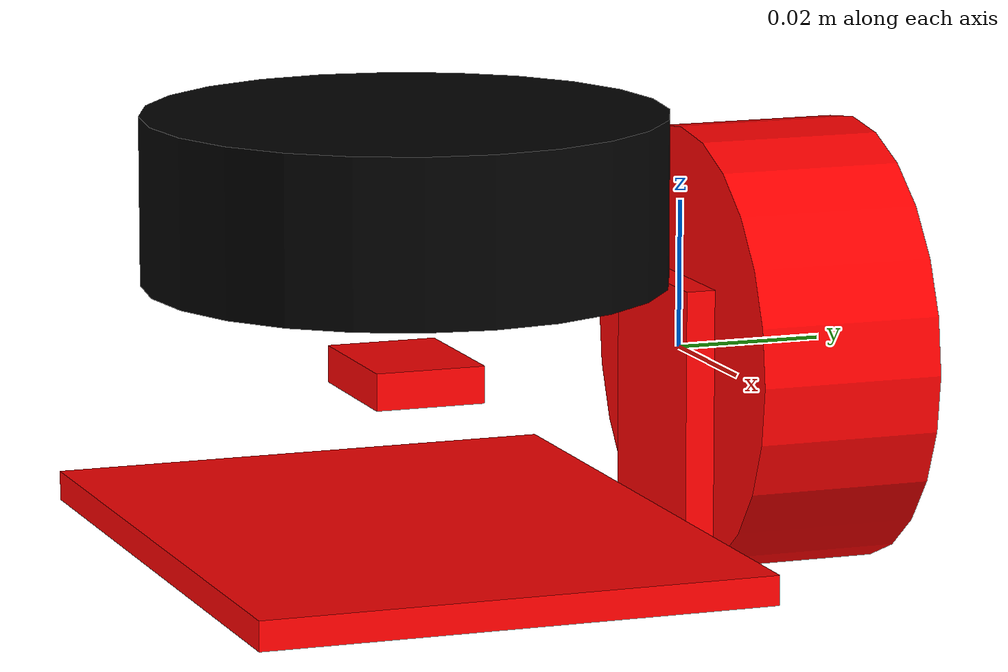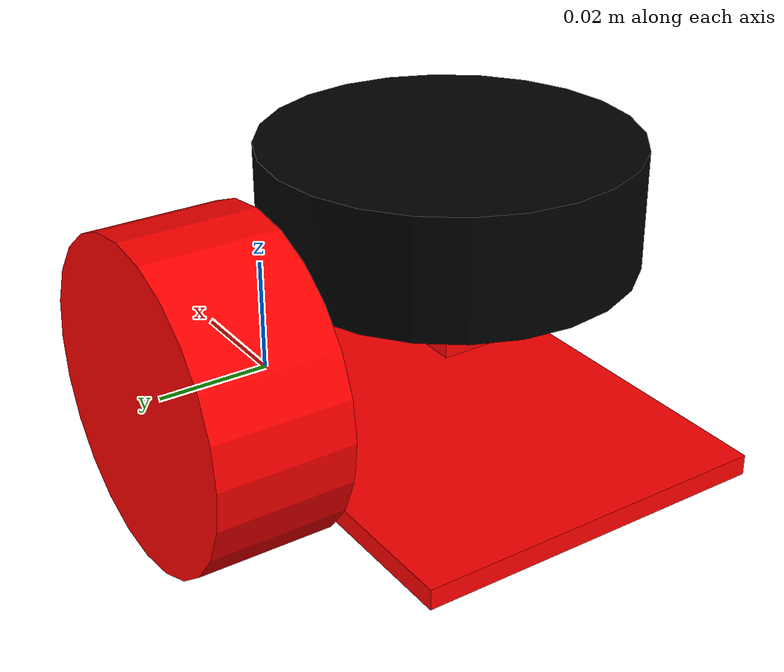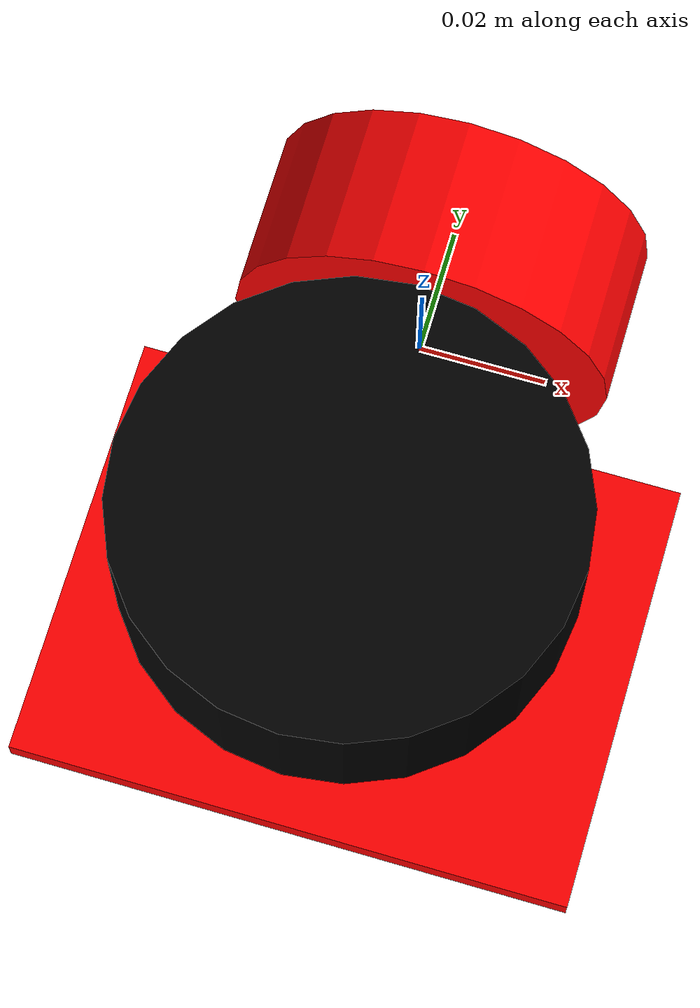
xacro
<?xml version="1.0"?>
<robot xmlns:xacro="http://www.ros.org/wiki/xacro">

     <material name="white">
        <color rgba="1 1 1 1" />
    </material>

    <material name="orange">
        <color rgba="1 0.3 0.1 1"/>
    </material>

    <material name="red">
        <color rgba="1 0 0 1"/>
    </material>

    <material name="blue">
        <color rgba="0.2 0.2 1 1"/>
    </material>

    <material name="black">
        <color rgba="0 0 0 1"/>
    </material>

    <link name="base_link">

    </link>

    <!-- Stepper Motor Link and Joint-->
    <joint name="stepper_motor_joint" type="revolute">
        <parent link="base_link"/>
        <child link="stepper_motor"/>
        <origin xyz="0 0 0" rpy="${pi/2} 0 0"/>
        <axis xyz="1 1 1"/>
        <limit effort="1000" lower="-${pi/2}" upper="${pi/2}" velocity="0.5"/>
    </joint>

    <link name="stepper_motor">
        <visual>
            <origin xyz="0 0 -0.0125"/>
            <geometry>
                <cylinder radius="0.03" length="0.025"/>
            </geometry>
            <material name="red"/>
        </visual>
        <collision>
            <origin xyz="0 0 -0.0125"/>
            <geometry>
                <cylinder radius="0.03" length="0.025"/>
            </geometry>
        </collision>
    </link>

    <!-- Mounting Plate Link and Joint-->
    <joint name="mounting_plate_arm_joint" type="revolute">
        <parent link="stepper_motor"/>
        <child link="mounting_plate_arm"/>
        <origin xyz="0 0 0" rpy="-${pi/2} 0 0"/>
        <axis xyz="0 1 0"/>
        <limit effort="1000" lower="-${pi/2}" upper="${pi/2}" velocity="0.5"/>
    </joint>

    <link name="mounting_plate_arm">
        <visual>
            <origin xyz="0 -0.002 -0.0075"/>
            <geometry>
                <box size="0.025 0.004 0.035"/>
            </geometry>
            <material name="red"/>
        </visual>
        <collision>
            <origin xyz="0 -0.002 -0.0075"/>
            <geometry>
                <box size="0.025 0.004 0.035"/>
            </geometry>
        </collision>
    </link>

    <joint name="mounting_plate_base_joint" type="fixed">
        <parent link="mounting_plate_arm"/>
        <child link="mounting_plate_base"/>
        <origin xyz="0 -0.039 -0.021"/>
    </joint>

    <link name="mounting_plate_base">
        <visual>
            <origin xyz="0 0 -0.002"/>
            <geometry>
                <box size="0.09 0.07 0.004"/>
            </geometry>
            <material name="red"/>
        </visual>
        <collision>
            <origin xyz="0 0 -0.002"/>
            <geometry>
                <box size="0.09 0.07 0.004"/>
            </geometry>
        </collision>
    </link>

    <!-- LiDAR Link and Joint -->
    <joint name="lidar_joint" type="fixed">
        <parent link="mounting_plate_base"/>
        <child link="lidar_sensor"/>
        <origin xyz="0 0 0.045" rpy="0 0 ${pi}"/>
    </joint>

    <link name="lidar_sensor">
        <visual>
            <origin xyz="0 0 -0.00125"/>
            <geometry>
                <cylinder radius="0.035" length="0.0225"/>
            </geometry>
            <material name="black"/>
        </visual>
        <collision>
            <origin xyz="0 0 -0.00125"/>
            <geometry>
                <cylinder radius="0.035" length="0.0225"/>
            </geometry>
        </collision>
    </link>

    <!-- IMU Link and Joint-->
    <joint name="imu_joint" type="fixed">
        <parent link="mounting_plate_base"/>
        <child link="imu_sensor"/>
        <origin xyz="0 0 0.02"/>
    </joint>

    <link name="imu_sensor">
        <visual>
            <origin xyz="0 0 0"/>
            <geometry>
                <box size="0.02 0.015 0.005"/>
            </geometry>
            <material name="red"/>
        </visual>
        <collision>
            <origin xyz="0 0 0"/>
            <geometry>
                <box size="0.02 0.015 0.005"/>
            </geometry>
        </collision>
    </link>

</robot>
